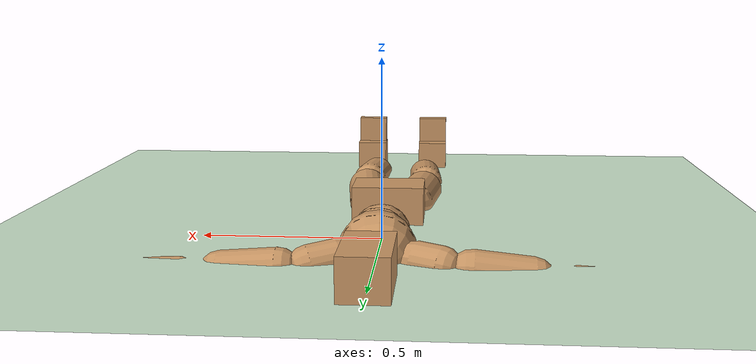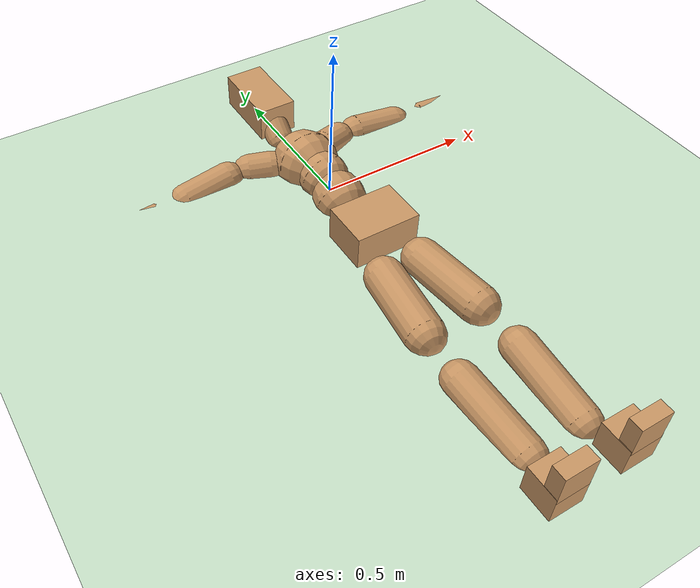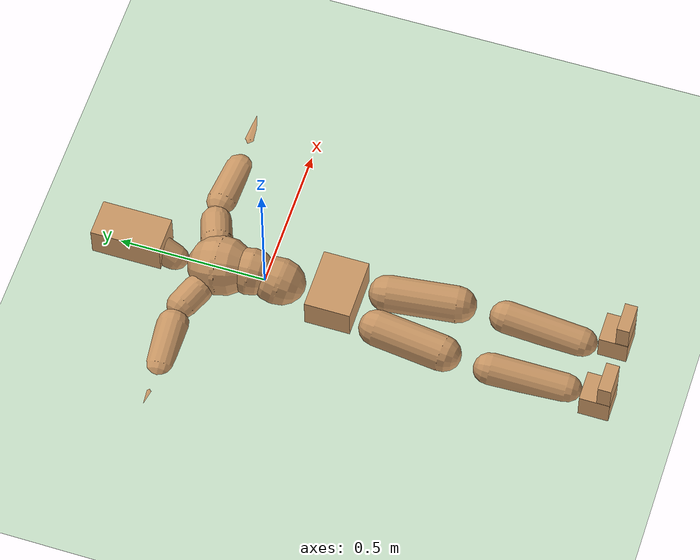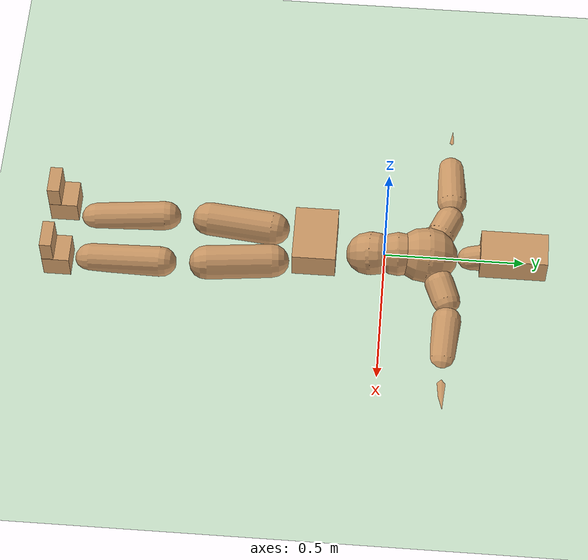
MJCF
<mujoco model="humanoid">
  <compiler coordinate="local"/>
  <default>
    <joint damping="0.0" armature="0.01" stiffness="0.0" limited="true"/>
    <geom conaffinity="1" condim="3" contype="7" margin="0.001" rgba="0.8 0.6 .4 1"/>
  </default>
  <asset>
    <texture type="skybox" builtin="gradient" rgb1=".4 .5 .6" rgb2="0 0 0" width="100" height="100"/>
    <texture builtin="flat" height="1278" mark="cross" markrgb="1 1 1" name="texgeom" random="0.01" rgb1="0.8 0.6 0.4" rgb2="0.8 0.6 0.4" type="cube" width="127"/>
    <texture builtin="checker" height="100" name="texplane" rgb1="0 0 0" rgb2="0.8 0.8 0.8" type="2d" width="100"/>
    <material name="MatPlane" reflectance="0.5" shininess="1" specular="1" texrepeat="60 60" texture="texplane"/>
    <material name="geom" texture="texgeom" texuniform="true"/>
  </asset>
  <worldbody>
    <light cutoff="100" diffuse="1 1 1" dir="-0 0 -1.3" directional="true" exponent="1" pos="0 0 1.3" specular=".1 .1 .1"/>
    <geom conaffinity="1" condim="3" name="floor" pos="0 0 0" rgba="0.8 0.9 0.8 1" size="100 100 .2" type="plane" material="MatPlane"/>
    <body name="Pelvis" pos="-0.0022 -0.2408 0.0286">
      <freejoint name="Pelvis"/>
      <geom type="box" density="3181.710087" pos="-0.0024 -0.0084 -0.0055" size="0.105 0.0771 0.085" quat="1.0000 0.0000 0.0000 0.0000" name="Pelvis"/>
      <body name="L_Hip" pos="0.0586 -0.0823 -0.0177">
        <joint name="L_Hip_x" type="hinge" pos="0 0 0" axis="1 0 0" stiffness="800" damping="80" armature="0.02" range="-180.0000 180.0000"/>
        <joint name="L_Hip_y" type="hinge" pos="0 0 0" axis="0 1 0" stiffness="800" damping="80" armature="0.02" range="-180.0000 180.0000"/>
        <joint name="L_Hip_z" type="hinge" pos="0 0 0" axis="0 0 1" stiffness="800" damping="80" armature="0.02" range="-180.0000 180.0000"/>
        <geom type="capsule" contype="1" conaffinity="1" density="2040.816327" fromto="0.0087 -0.0773 0.0016 0.0348 -0.3092 0.0064" size="0.062" name="L_Hip"/>
        <body name="L_Knee" pos="0.0435 -0.3865 0.008">
          <joint name="L_Knee_x" type="hinge" pos="0 0 0" axis="1 0 0" stiffness="800" damping="80" armature="0.02" range="-180.0000 180.0000"/>
          <joint name="L_Knee_y" type="hinge" pos="0 0 0" axis="0 1 0" stiffness="800" damping="80" armature="0.02" range="-180.0000 180.0000"/>
          <joint name="L_Knee_z" type="hinge" pos="0 0 0" axis="0 0 1" stiffness="800" damping="80" armature="0.02" range="-180.0000 180.0000"/>
          <geom type="capsule" contype="1" conaffinity="1" density="1234.567901" fromto="-0.0030 -0.0854 -0.0075 -0.0118 -0.3415 -0.0299" size="0.0552" name="L_Knee"/>
          <body name="L_Ankle" pos="-0.0148 -0.4269 -0.0374">
            <joint name="L_Ankle_x" type="hinge" pos="0 0 0" axis="1 0 0" stiffness="800" damping="80" armature="0.02" range="-180.0000 180.0000"/>
            <joint name="L_Ankle_y" type="hinge" pos="0 0 0" axis="0 1 0" stiffness="800" damping="80" armature="0.02" range="-180.0000 180.0000"/>
            <joint name="L_Ankle_z" type="hinge" pos="0 0 0" axis="0 0 1" stiffness="800" damping="80" armature="0.02" range="-180.0000 180.0000"/>
            <geom type="box" density="449.566646" pos="0.0282 -0.0243 0.0215" size="0.052 0.0482 0.0887" quat="1.0000 0.0000 0.0000 0.0000" name="L_Ankle"/>
            <body name="L_Toe" pos="0.0411 -0.0603 0.122">
              <joint name="L_Toe_x" type="hinge" pos="0 0 0" axis="1 0 0" stiffness="500" damping="50" armature="0.02" range="-180.0000 180.0000"/>
              <joint name="L_Toe_y" type="hinge" pos="0 0 0" axis="0 1 0" stiffness="500" damping="50" armature="0.02" range="-180.0000 180.0000"/>
              <joint name="L_Toe_z" type="hinge" pos="0 0 0" axis="0 0 1" stiffness="500" damping="50" armature="0.02" range="-180.0000 180.0000"/>
              <geom type="box" density="430.64506" pos="-0.0129 0.0087 0.0254" size="0.0502 0.0209 0.0515" quat="1.0000 0.0000 0.0000 0.0000" name="L_Toe"/>
            </body>
          </body>
        </body>
      </body>
      <body name="R_Hip" pos="-0.0603 -0.0905 -0.0135">
        <joint name="R_Hip_x" type="hinge" pos="0 0 0" axis="1 0 0" stiffness="800" damping="80" armature="0.02" range="-180.0000 180.0000"/>
        <joint name="R_Hip_y" type="hinge" pos="0 0 0" axis="0 1 0" stiffness="800" damping="80" armature="0.02" range="-180.0000 180.0000"/>
        <joint name="R_Hip_z" type="hinge" pos="0 0 0" axis="0 0 1" stiffness="800" damping="80" armature="0.02" range="-180.0000 180.0000"/>
        <geom type="capsule" contype="1" conaffinity="1" density="2040.816327" fromto="-0.0087 -0.0767 -0.0010 -0.0346 -0.3070 -0.0039" size="0.0615" name="R_Hip"/>
        <body name="R_Knee" pos="-0.0433 -0.3837 -0.0048">
          <joint name="R_Knee_x" type="hinge" pos="0 0 0" axis="1 0 0" stiffness="800" damping="80" armature="0.02" range="-180.0000 180.0000"/>
          <joint name="R_Knee_y" type="hinge" pos="0 0 0" axis="0 1 0" stiffness="800" damping="80" armature="0.02" range="-180.0000 180.0000"/>
          <joint name="R_Knee_z" type="hinge" pos="0 0 0" axis="0 0 1" stiffness="800" damping="80" armature="0.02" range="-180.0000 180.0000"/>
          <geom type="capsule" contype="1" conaffinity="1" density="1234.567901" fromto="0.0038 -0.0840 -0.0069 0.0152 -0.3360 -0.0276" size="0.0554" name="R_Knee"/>
          <body name="R_Ankle" pos="0.0191 -0.42 -0.0346">
            <joint name="R_Ankle_x" type="hinge" pos="0 0 0" axis="1 0 0" stiffness="800" damping="80" armature="0.02" range="-180.0000 180.0000"/>
            <joint name="R_Ankle_y" type="hinge" pos="0 0 0" axis="0 1 0" stiffness="800" damping="80" armature="0.02" range="-180.0000 180.0000"/>
            <joint name="R_Ankle_z" type="hinge" pos="0 0 0" axis="0 0 1" stiffness="800" damping="80" armature="0.02" range="-180.0000 180.0000"/>
            <geom type="box" density="437.920846" pos="-0.0302 -0.0275 0.0249" size="0.0511 0.0503 0.0908" quat="1.0000 0.0000 0.0000 0.0000" name="R_Ankle"/>
            <body name="R_Toe" pos="-0.0348 -0.0621 0.1303">
              <joint name="R_Toe_x" type="hinge" pos="0 0 0" axis="1 0 0" stiffness="500" damping="50" armature="0.02" range="-180.0000 180.0000"/>
              <joint name="R_Toe_y" type="hinge" pos="0 0 0" axis="0 1 0" stiffness="500" damping="50" armature="0.02" range="-180.0000 180.0000"/>
              <joint name="R_Toe_z" type="hinge" pos="0 0 0" axis="0 0 1" stiffness="500" damping="50" armature="0.02" range="-180.0000 180.0000"/>
              <geom type="box" density="431.122356" pos="0.0046 0.0061 0.0215" size="0.0506 0.0219 0.052" quat="1.0000 0.0000 0.0000 0.0000" name="R_Toe"/>
            </body>
          </body>
        </body>
      </body>
      <body name="Torso" pos="0.0044 0.1244 -0.0384">
        <joint name="Torso_x" type="hinge" pos="0 0 0" axis="1 0 0" stiffness="1000" damping="100" armature="0.02" range="-180.0000 180.0000"/>
        <joint name="Torso_y" type="hinge" pos="0 0 0" axis="0 1 0" stiffness="1000" damping="100" armature="0.02" range="-180.0000 180.0000"/>
        <joint name="Torso_z" type="hinge" pos="0 0 0" axis="0 0 1" stiffness="1000" damping="100" armature="0.02" range="-180.0000 180.0000"/>
        <geom type="capsule" contype="1" conaffinity="1" density="2040.816327" fromto="0.0020 0.0621 0.0121 0.0025 0.0759 0.0148" size="0.0826" name="Torso"/>
        <body name="Spine" pos="0.0045 0.138 0.0268">
          <joint name="Spine_x" type="hinge" pos="0 0 0" axis="1 0 0" stiffness="1000" damping="100" armature="0.02" range="-180.0000 180.0000"/>
          <joint name="Spine_y" type="hinge" pos="0 0 0" axis="0 1 0" stiffness="1000" damping="100" armature="0.02" range="-180.0000 180.0000"/>
          <joint name="Spine_z" type="hinge" pos="0 0 0" axis="0 0 1" stiffness="1000" damping="100" armature="0.02" range="-180.0000 180.0000"/>
          <geom type="capsule" contype="1" conaffinity="1" density="2040.816327" fromto="-0.0010 0.0252 0.0013 -0.0012 0.0308 0.0016" size="0.0803" name="Spine"/>
          <body name="Chest" pos="-0.0023 0.056 0.0029">
            <joint name="Chest_x" type="hinge" pos="0 0 0" axis="1 0 0" stiffness="1000" damping="100" armature="0.02" range="-180.0000 180.0000"/>
            <joint name="Chest_y" type="hinge" pos="0 0 0" axis="0 1 0" stiffness="1000" damping="100" armature="0.02" range="-180.0000 180.0000"/>
            <joint name="Chest_z" type="hinge" pos="0 0 0" axis="0 0 1" stiffness="1000" damping="100" armature="0.02" range="-180.0000 180.0000"/>
            <geom type="capsule" contype="1" conaffinity="1" density="2040.816327" fromto="-0.0037 0.0657 -0.0114 -0.0045 0.0803 -0.0139" size="0.1044" name="Chest"/>
            <body name="Neck" pos="-0.0134 0.2116 -0.0335">
              <joint name="Neck_x" type="hinge" pos="0 0 0" axis="1 0 0" stiffness="500" damping="50" armature="0.02" range="-180.0000 180.0000"/>
              <joint name="Neck_y" type="hinge" pos="0 0 0" axis="0 1 0" stiffness="500" damping="50" armature="0.02" range="-180.0000 180.0000"/>
              <joint name="Neck_z" type="hinge" pos="0 0 0" axis="0 0 1" stiffness="500" damping="50" armature="0.02" range="-180.0000 180.0000"/>
              <geom type="capsule" contype="1" conaffinity="1" density="1000" fromto="0.0020 0.0178 0.0101 0.0081 0.0711 0.0403" size="0.0455" name="Neck"/>
              <body name="Head" pos="0.0101 0.0889 0.0504">
                <joint name="Head_x" type="hinge" pos="0 0 0" axis="1 0 0" stiffness="500" damping="50" armature="0.02" range="-180.0000 180.0000"/>
                <joint name="Head_y" type="hinge" pos="0 0 0" axis="0 1 0" stiffness="500" damping="50" armature="0.02" range="-180.0000 180.0000"/>
                <joint name="Head_z" type="hinge" pos="0 0 0" axis="0 0 1" stiffness="500" damping="50" armature="0.02" range="-180.0000 180.0000"/>
                <geom type="box" density="1016.147326" pos="0.0013 0.0807 -0.0084" size="0.0633 0.1187 0.0789" quat="1.0000 0.0000 0.0000 0.0000" name="Head"/>
              </body>
            </body>
            <body name="L_Thorax" pos="0.0717 0.114 -0.0189">
              <joint name="L_Thorax_x" type="hinge" pos="0 0 0" axis="1 0 0" stiffness="500" damping="50" armature="0.02" range="-180.0000 180.0000"/>
              <joint name="L_Thorax_y" type="hinge" pos="0 0 0" axis="0 1 0" stiffness="500" damping="50" armature="0.02" range="-180.0000 180.0000"/>
              <joint name="L_Thorax_z" type="hinge" pos="0 0 0" axis="0 0 1" stiffness="500" damping="50" armature="0.02" range="-180.0000 180.0000"/>
              <geom type="capsule" contype="1" conaffinity="1" density="1000" fromto="0.0246 0.0090 -0.0038 0.0983 0.0362 -0.0152" size="0.053" name="L_Thorax"/>
              <body name="L_Shoulder" pos="0.1229 0.0452 -0.019">
                <joint name="L_Shoulder_x" type="hinge" pos="0 0 0" axis="1 0 0" stiffness="500" damping="50" armature="0.02" range="-720.0000 720.0000"/>
                <joint name="L_Shoulder_y" type="hinge" pos="0 0 0" axis="0 1 0" stiffness="500" damping="50" armature="0.02" range="-720.0000 720.0000"/>
                <joint name="L_Shoulder_z" type="hinge" pos="0 0 0" axis="0 0 1" stiffness="500" damping="50" armature="0.02" range="-720.0000 720.0000"/>
                <geom type="capsule" contype="1" conaffinity="1" density="1000" fromto="0.0511 -0.0031 -0.0046 0.2043 -0.0125 -0.0184" size="0.0553" name="L_Shoulder"/>
                <body name="L_Elbow" pos="0.2553 -0.0156 -0.0229">
                  <joint name="L_Elbow_x" type="hinge" pos="0 0 0" axis="1 0 0" stiffness="500" damping="50" armature="0.02" range="-720.0000 720.0000"/>
                  <joint name="L_Elbow_y" type="hinge" pos="0 0 0" axis="0 1 0" stiffness="500" damping="50" armature="0.02" range="-720.0000 720.0000"/>
                  <joint name="L_Elbow_z" type="hinge" pos="0 0 0" axis="0 0 1" stiffness="500" damping="50" armature="0.02" range="-720.0000 720.0000"/>
                  <geom type="capsule" contype="1" conaffinity="1" density="1000" fromto="0.0531 0.0025 -0.0015 0.2126 0.0102 -0.0059" size="0.0427" name="L_Elbow"/>
                  <body name="L_Wrist" pos="0.2657 0.0127 -0.0074">
                    <joint name="L_Wrist_x" type="hinge" pos="0 0 0" axis="1 0 0" stiffness="300" damping="30" armature="0.02" range="-180.0000 180.0000"/>
                    <joint name="L_Wrist_y" type="hinge" pos="0 0 0" axis="0 1 0" stiffness="300" damping="30" armature="0.02" range="-180.0000 180.0000"/>
                    <joint name="L_Wrist_z" type="hinge" pos="0 0 0" axis="0 0 1" stiffness="300" damping="30" armature="0.02" range="-180.0000 180.0000"/>
                    <geom type="capsule" contype="1" conaffinity="1" density="1000" fromto="0.0173 -0.0021 -0.0031 0.0694 -0.0085 -0.0125" size="0.0342" name="L_Wrist"/>
                    <body name="L_Hand" pos="0.0867 -0.0106 -0.0156">
                      <joint name="L_Hand_x" type="hinge" pos="0 0 0" axis="1 0 0" stiffness="300" damping="30" armature="0.02" range="-180.0000 180.0000"/>
                      <joint name="L_Hand_y" type="hinge" pos="0 0 0" axis="0 1 0" stiffness="300" damping="30" armature="0.02" range="-180.0000 180.0000"/>
                      <joint name="L_Hand_z" type="hinge" pos="0 0 0" axis="0 0 1" stiffness="300" damping="30" armature="0.02" range="-180.0000 180.0000"/>
                      <geom type="box" density="411.670137" pos="0.0517 0.0026 -0.0062" size="0.061 0.0165 0.0569" quat="1.0000 0.0000 0.0000 0.0000" name="L_Hand"/>
                    </body>
                  </body>
                </body>
              </body>
            </body>
            <body name="R_Thorax" pos="-0.083 0.1125 -0.0237">
              <joint name="R_Thorax_x" type="hinge" pos="0 0 0" axis="1 0 0" stiffness="500" damping="50" armature="0.02" range="-180.0000 180.0000"/>
              <joint name="R_Thorax_y" type="hinge" pos="0 0 0" axis="0 1 0" stiffness="500" damping="50" armature="0.02" range="-180.0000 180.0000"/>
              <joint name="R_Thorax_z" type="hinge" pos="0 0 0" axis="0 0 1" stiffness="500" damping="50" armature="0.02" range="-180.0000 180.0000"/>
              <geom type="capsule" contype="1" conaffinity="1" density="1000" fromto="-0.0226 0.0094 -0.0017 -0.0906 0.0375 -0.0068" size="0.0531" name="R_Thorax"/>
              <body name="R_Shoulder" pos="-0.1132 0.0469 -0.0085">
                <joint name="R_Shoulder_x" type="hinge" pos="0 0 0" axis="1 0 0" stiffness="500" damping="50" armature="0.02" range="-720.0000 720.0000"/>
                <joint name="R_Shoulder_y" type="hinge" pos="0 0 0" axis="0 1 0" stiffness="500" damping="50" armature="0.02" range="-720.0000 720.0000"/>
                <joint name="R_Shoulder_z" type="hinge" pos="0 0 0" axis="0 0 1" stiffness="500" damping="50" armature="0.02" range="-720.0000 720.0000"/>
                <geom type="capsule" contype="1" conaffinity="1" density="1000" fromto="-0.0520 -0.0029 -0.0063 -0.2081 -0.0115 -0.0250" size="0.056" name="R_Shoulder"/>
                <body name="R_Elbow" pos="-0.2601 -0.0144 -0.0313">
                  <joint name="R_Elbow_x" type="hinge" pos="0 0 0" axis="1 0 0" stiffness="500" damping="50" armature="0.02" range="-720.0000 720.0000"/>
                  <joint name="R_Elbow_y" type="hinge" pos="0 0 0" axis="0 1 0" stiffness="500" damping="50" armature="0.02" range="-720.0000 720.0000"/>
                  <joint name="R_Elbow_z" type="hinge" pos="0 0 0" axis="0 0 1" stiffness="500" damping="50" armature="0.02" range="-720.0000 720.0000"/>
                  <geom type="capsule" contype="1" conaffinity="1" density="1000" fromto="-0.0538 0.0014 -0.0012 -0.2153 0.0054 -0.0048" size="0.0434" name="R_Elbow"/>
                  <body name="R_Wrist" pos="-0.2691 0.0068 -0.006">
                    <joint name="R_Wrist_x" type="hinge" pos="0 0 0" axis="1 0 0" stiffness="300" damping="30" armature="0.02" range="-180.0000 180.0000"/>
                    <joint name="R_Wrist_y" type="hinge" pos="0 0 0" axis="0 1 0" stiffness="300" damping="30" armature="0.02" range="-180.0000 180.0000"/>
                    <joint name="R_Wrist_z" type="hinge" pos="0 0 0" axis="0 0 1" stiffness="300" damping="30" armature="0.02" range="-180.0000 180.0000"/>
                    <geom type="capsule" contype="1" conaffinity="1" density="1000" fromto="-0.0178 -0.0017 -0.0020 -0.0710 -0.0069 -0.0081" size="0.0348" name="R_Wrist"/>
                    <body name="R_Hand" pos="-0.0888 -0.0087 -0.0101">
                      <joint name="R_Hand_x" type="hinge" pos="0 0 0" axis="1 0 0" stiffness="300" damping="30" armature="0.02" range="-180.0000 180.0000"/>
                      <joint name="R_Hand_y" type="hinge" pos="0 0 0" axis="0 1 0" stiffness="300" damping="30" armature="0.02" range="-180.0000 180.0000"/>
                      <joint name="R_Hand_z" type="hinge" pos="0 0 0" axis="0 0 1" stiffness="300" damping="30" armature="0.02" range="-180.0000 180.0000"/>
                      <geom type="box" density="414.836579" pos="-0.0487 0.0021 -0.0089" size="0.0594 0.0173 0.0578" quat="1.0000 0.0000 0.0000 0.0000" name="R_Hand"/>
                    </body>
                  </body>
                </body>
              </body>
            </body>
          </body>
        </body>
      </body>
    </body>
  </worldbody>
  <actuator>
    <motor name="L_Hip_x" joint="L_Hip_x" gear="500"/>
    <motor name="L_Hip_y" joint="L_Hip_y" gear="500"/>
    <motor name="L_Hip_z" joint="L_Hip_z" gear="500"/>
    <motor name="L_Knee_x" joint="L_Knee_x" gear="500"/>
    <motor name="L_Knee_y" joint="L_Knee_y" gear="500"/>
    <motor name="L_Knee_z" joint="L_Knee_z" gear="500"/>
    <motor name="L_Ankle_x" joint="L_Ankle_x" gear="500"/>
    <motor name="L_Ankle_y" joint="L_Ankle_y" gear="500"/>
    <motor name="L_Ankle_z" joint="L_Ankle_z" gear="500"/>
    <motor name="L_Toe_x" joint="L_Toe_x" gear="500"/>
    <motor name="L_Toe_y" joint="L_Toe_y" gear="500"/>
    <motor name="L_Toe_z" joint="L_Toe_z" gear="500"/>
    <motor name="R_Hip_x" joint="R_Hip_x" gear="500"/>
    <motor name="R_Hip_y" joint="R_Hip_y" gear="500"/>
    <motor name="R_Hip_z" joint="R_Hip_z" gear="500"/>
    <motor name="R_Knee_x" joint="R_Knee_x" gear="500"/>
    <motor name="R_Knee_y" joint="R_Knee_y" gear="500"/>
    <motor name="R_Knee_z" joint="R_Knee_z" gear="500"/>
    <motor name="R_Ankle_x" joint="R_Ankle_x" gear="500"/>
    <motor name="R_Ankle_y" joint="R_Ankle_y" gear="500"/>
    <motor name="R_Ankle_z" joint="R_Ankle_z" gear="500"/>
    <motor name="R_Toe_x" joint="R_Toe_x" gear="500"/>
    <motor name="R_Toe_y" joint="R_Toe_y" gear="500"/>
    <motor name="R_Toe_z" joint="R_Toe_z" gear="500"/>
    <motor name="Torso_x" joint="Torso_x" gear="500"/>
    <motor name="Torso_y" joint="Torso_y" gear="500"/>
    <motor name="Torso_z" joint="Torso_z" gear="500"/>
    <motor name="Spine_x" joint="Spine_x" gear="500"/>
    <motor name="Spine_y" joint="Spine_y" gear="500"/>
    <motor name="Spine_z" joint="Spine_z" gear="500"/>
    <motor name="Chest_x" joint="Chest_x" gear="500"/>
    <motor name="Chest_y" joint="Chest_y" gear="500"/>
    <motor name="Chest_z" joint="Chest_z" gear="500"/>
    <motor name="Neck_x" joint="Neck_x" gear="500"/>
    <motor name="Neck_y" joint="Neck_y" gear="500"/>
    <motor name="Neck_z" joint="Neck_z" gear="500"/>
    <motor name="Head_x" joint="Head_x" gear="500"/>
    <motor name="Head_y" joint="Head_y" gear="500"/>
    <motor name="Head_z" joint="Head_z" gear="500"/>
    <motor name="L_Thorax_x" joint="L_Thorax_x" gear="500"/>
    <motor name="L_Thorax_y" joint="L_Thorax_y" gear="500"/>
    <motor name="L_Thorax_z" joint="L_Thorax_z" gear="500"/>
    <motor name="L_Shoulder_x" joint="L_Shoulder_x" gear="500"/>
    <motor name="L_Shoulder_y" joint="L_Shoulder_y" gear="500"/>
    <motor name="L_Shoulder_z" joint="L_Shoulder_z" gear="500"/>
    <motor name="L_Elbow_x" joint="L_Elbow_x" gear="500"/>
    <motor name="L_Elbow_y" joint="L_Elbow_y" gear="500"/>
    <motor name="L_Elbow_z" joint="L_Elbow_z" gear="500"/>
    <motor name="L_Wrist_x" joint="L_Wrist_x" gear="500"/>
    <motor name="L_Wrist_y" joint="L_Wrist_y" gear="500"/>
    <motor name="L_Wrist_z" joint="L_Wrist_z" gear="500"/>
    <motor name="L_Hand_x" joint="L_Hand_x" gear="500"/>
    <motor name="L_Hand_y" joint="L_Hand_y" gear="500"/>
    <motor name="L_Hand_z" joint="L_Hand_z" gear="500"/>
    <motor name="R_Thorax_x" joint="R_Thorax_x" gear="500"/>
    <motor name="R_Thorax_y" joint="R_Thorax_y" gear="500"/>
    <motor name="R_Thorax_z" joint="R_Thorax_z" gear="500"/>
    <motor name="R_Shoulder_x" joint="R_Shoulder_x" gear="500"/>
    <motor name="R_Shoulder_y" joint="R_Shoulder_y" gear="500"/>
    <motor name="R_Shoulder_z" joint="R_Shoulder_z" gear="500"/>
    <motor name="R_Elbow_x" joint="R_Elbow_x" gear="500"/>
    <motor name="R_Elbow_y" joint="R_Elbow_y" gear="500"/>
    <motor name="R_Elbow_z" joint="R_Elbow_z" gear="500"/>
    <motor name="R_Wrist_x" joint="R_Wrist_x" gear="500"/>
    <motor name="R_Wrist_y" joint="R_Wrist_y" gear="500"/>
    <motor name="R_Wrist_z" joint="R_Wrist_z" gear="500"/>
    <motor name="R_Hand_x" joint="R_Hand_x" gear="500"/>
    <motor name="R_Hand_y" joint="R_Hand_y" gear="500"/>
    <motor name="R_Hand_z" joint="R_Hand_z" gear="500"/>
  </actuator>
  <contact>
    <exclude body1="Torso" body2="Chest"/>
    <exclude body1="Head" body2="Chest"/>
    <exclude body1="R_Knee" body2="R_Toe"/>
    <exclude body1="R_Knee" body2="L_Ankle"/>
    <exclude body1="R_Knee" body2="L_Toe"/>
    <exclude body1="L_Knee" body2="L_Toe"/>
    <exclude body1="L_Knee" body2="R_Ankle"/>
    <exclude body1="L_Knee" body2="R_Toe"/>
    <exclude body1="L_Shoulder" body2="Chest"/>
    <exclude body1="R_Shoulder" body2="Chest"/>
  </contact>
  <sensor/>
  <size njmax="700" nconmax="700"/>
</mujoco>
